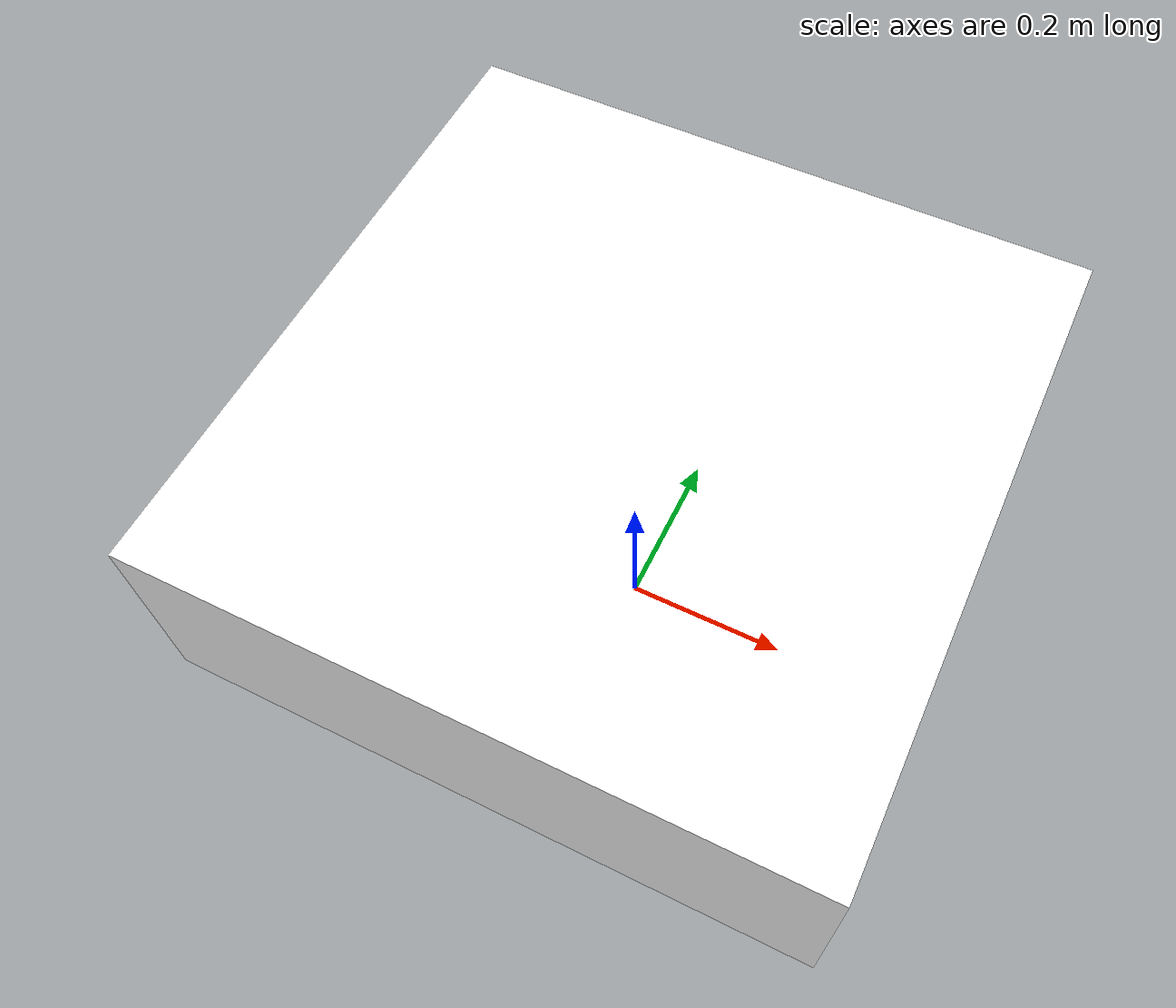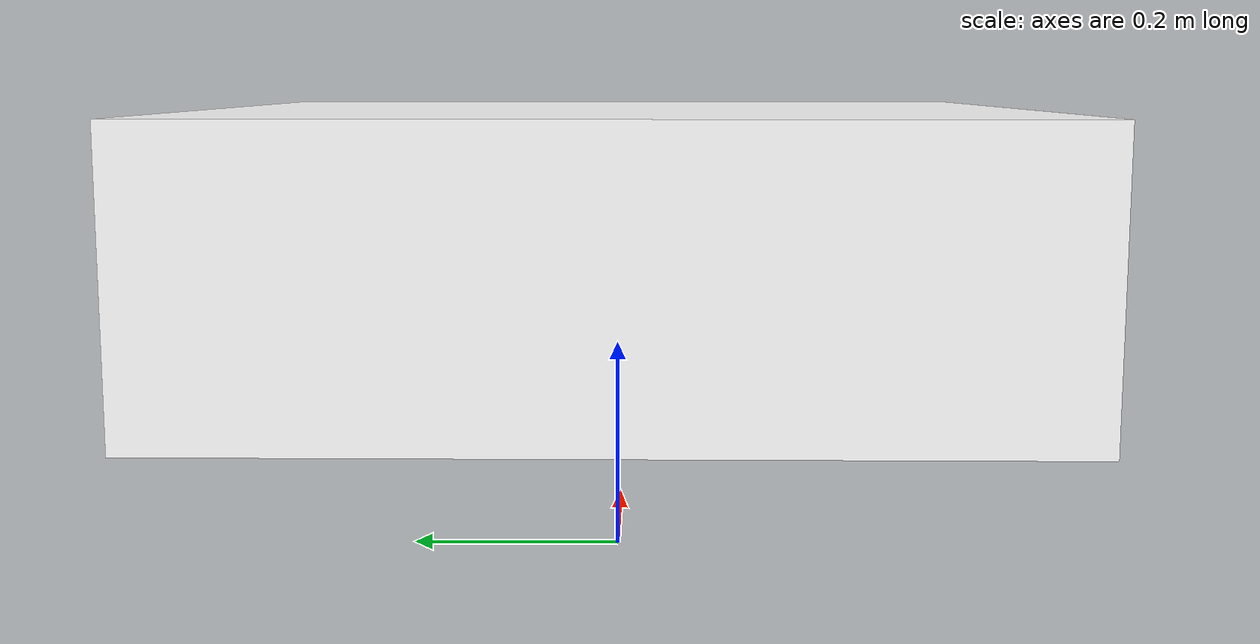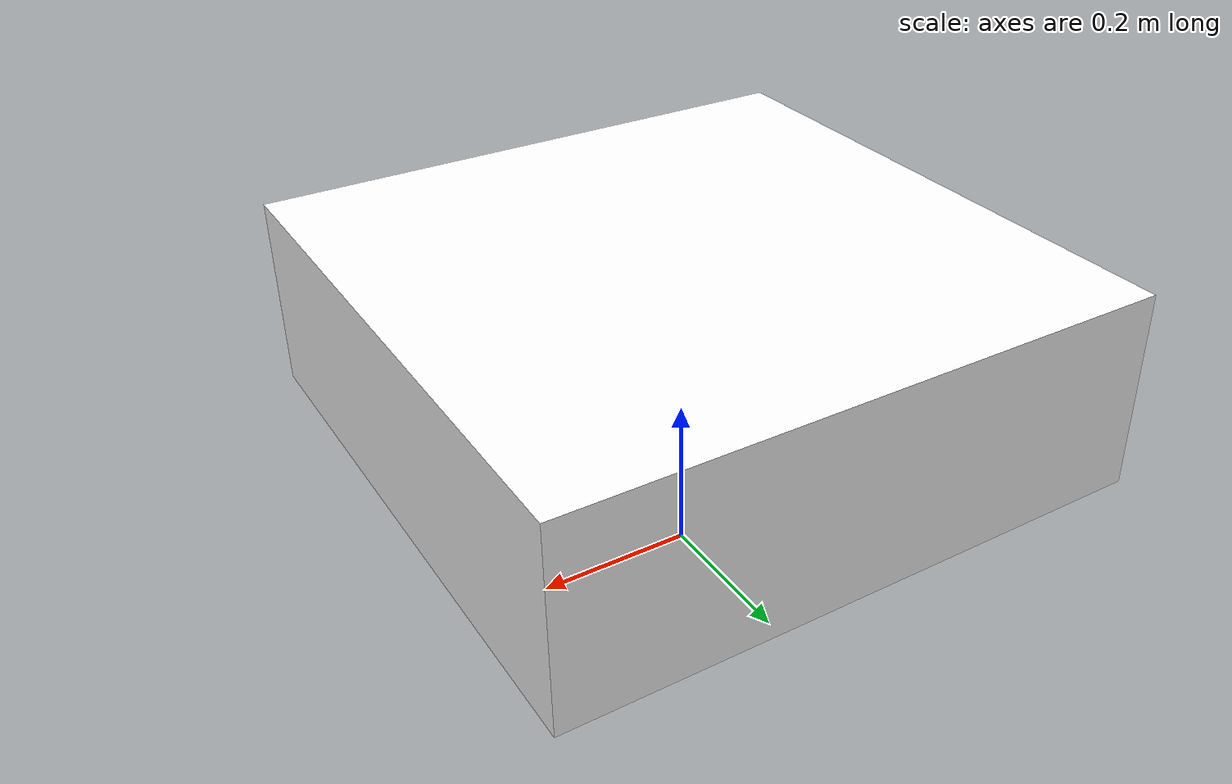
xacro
<?xml version="1.0"?>
<!-- |    ommidirecctional_four-wheeled_robot.urdf.xacro				| -->
<!-- |    author: Koji Shibata                               				| -->
<!-- |    e-mail: kshibata.0519@gmail.com						| -->
<!-- |    This is a URDF file that describes an omnidirectional 			| -->
<!-- |    four-wheeled robot for ROS users.						| -->
<robot name="omnidirectional_four-wheeled_robot" xmlns:xacro="http://ros.org/wiki/xacro">
<xacro:property name="pi" value="3.1415926535897931"/>
<xacro:property name="x_side" value="0.75"/>
<xacro:property name="y_side" value="0.75"/>
<xacro:property name="z_side" value="0.25"/>
<xacro:property name="body_mass" value="1."/>

<xacro:property name="cylinder_radius" value="0.2"/>
<xacro:property name="cylinder_length" value="0.1"/>
<xacro:property name="wheel_mass" value="0.5"/>

	<link name="base_link"/>
	<link name="body_link">
		<visual>
			<geometry>
				<box size="${x_side} ${y_side} ${z_side}"/>
			</geometry>
			<material name="White">
				<color rgba="1. 1. 1. 1."/>
			</material>
		</visual>

		<collision>
			<geometry>
				<box size="${x_side} ${y_side} ${z_side}"/>
			</geometry>
		</collision>

		<inertial>
			<origin xyz="0. 0. 0."/>
			<mass value="${body_mass}"/>
			<inertia ixx="${body_mass * (y_side**2 + z_side**2) / 12}" ixy="0." ixz="0."
					  iyy="${body_mass * (x_side**2 + z_side**2) / 12}" iyz="0."
					  izz="${body_mass * (x_side**2 + y_side**2) / 12}"/>
		</inertial>
	</link>
	<joint name="base_joint" type="fixed">
		<origin xyz="0. 0. 0.3" rpy="0. 0. 0."/>
		<parent link="base_link"/>
		<child link="body_link"/>

		<calibration rising="0."/>
		<dynamics damping="0." friction="0."/>
	 </joint>
</robot>
